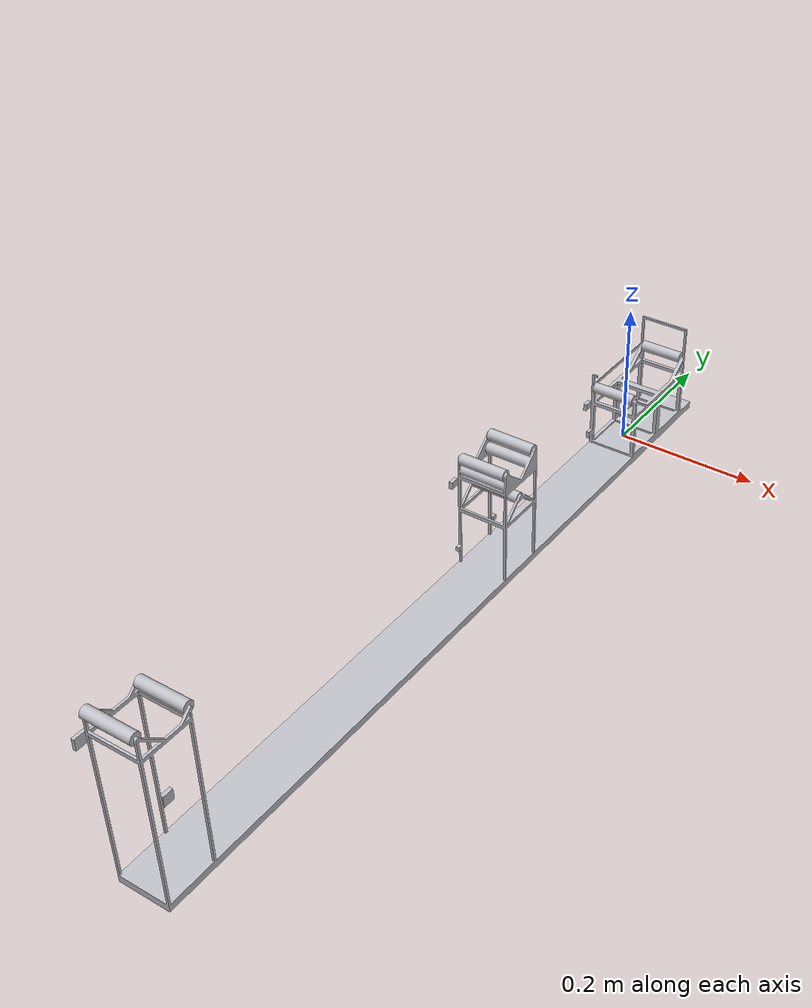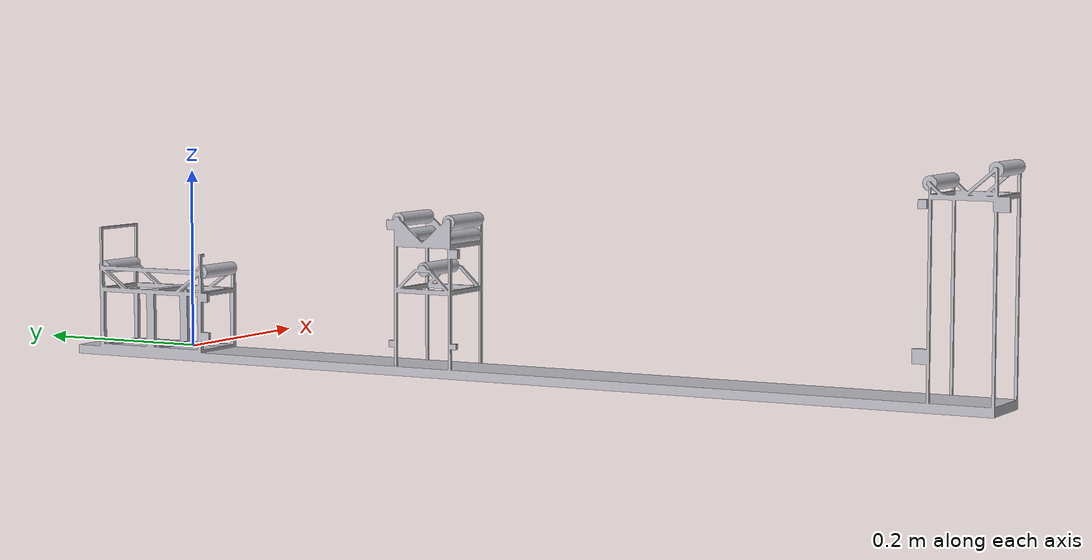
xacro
<?xml version="1.0" ?>
<robot name="(Unsaved)" xmlns:xacro="http://www.ros.org/wiki/xacro">

<xacro:include filename="$(find (Unsaved)_description)/urdf/materials.xacro" />
<xacro:include filename="$(find (Unsaved)_description)/urdf/(Unsaved).trans" />
<xacro:include filename="$(find (Unsaved)_description)/urdf/(Unsaved).gazebo" />
<link name="base_link">
  <inertial>
    <origin xyz="-0.0002354925576125097 -0.39870213925071846 0.0038001166433010557" rpy="0 0 0"/>
    <mass value="6.838797424372215"/>
    <inertia ixx="0.719389" iyy="0.013127" izz="0.712465" ixy="-0.000145" iyz="-0.000399" ixz="0.000157"/>
  </inertial>
  <visual>
    <origin xyz="0 0 0" rpy="0 0 0"/>
    <geometry>
      <mesh filename="package://(Unsaved)_description/meshes/base_link.stl" scale="0.001 0.001 0.001"/>
    </geometry>
    <material name="silver"/>
  </visual>
  <collision>
    <origin xyz="0 0 0" rpy="0 0 0"/>
    <geometry>
      <mesh filename="package://(Unsaved)_description/meshes/base_link.stl" scale="0.001 0.001 0.001"/>
    </geometry>
  </collision>
</link>

<link name="roller__6__1">
  <inertial>
    <origin xyz="0.029999999999999978 3.0897243692706855e-07 2.1613319246827079e-07" rpy="0 0 0"/>
    <mass value="0.08240024466238413"/>
    <inertia ixx="2e-06" iyy="2.6e-05" izz="2.6e-05" ixy="-0.0" iyz="-0.0" ixz="-0.0"/>
  </inertial>
  <visual>
    <origin xyz="0.03 -0.102509 -0.087687" rpy="0 0 0"/>
    <geometry>
      <mesh filename="package://(Unsaved)_description/meshes/roller__6__1.stl" scale="0.001 0.001 0.001"/>
    </geometry>
    <material name="silver"/>
  </visual>
  <collision>
    <origin xyz="0.03 -0.102509 -0.087687" rpy="0 0 0"/>
    <geometry>
      <mesh filename="package://(Unsaved)_description/meshes/roller__6__1.stl" scale="0.001 0.001 0.001"/>
    </geometry>
  </collision>
</link>

<link name="roller_1">
  <inertial>
    <origin xyz="0.029999999999999995 -3.0897243694788523e-07 2.1613319246827079e-07" rpy="0 0 0"/>
    <mass value="0.08240024466238413"/>
    <inertia ixx="2e-06" iyy="2.6e-05" izz="2.6e-05" ixy="-0.0" iyz="0.0" ixz="0.0"/>
  </inertial>
  <visual>
    <origin xyz="0.03 0.032509 -0.087687" rpy="0 0 0"/>
    <geometry>
      <mesh filename="package://(Unsaved)_description/meshes/roller_1.stl" scale="0.001 0.001 0.001"/>
    </geometry>
    <material name="silver"/>
  </visual>
  <collision>
    <origin xyz="0.03 0.032509 -0.087687" rpy="0 0 0"/>
    <geometry>
      <mesh filename="package://(Unsaved)_description/meshes/roller_1.stl" scale="0.001 0.001 0.001"/>
    </geometry>
  </collision>
</link>

<link name="roller__1__1">
  <inertial>
    <origin xyz="0.03200000000000001 1.6685805526162056e-07 -3.9324120906791826e-07" rpy="0 0 0"/>
    <mass value="0.08720307224128394"/>
    <inertia ixx="2e-06" iyy="3.1e-05" izz="3.1e-05" ixy="-0.0" iyz="0.0" ixz="0.0"/>
  </inertial>
  <visual>
    <origin xyz="0.032 0.291761 -0.156029" rpy="0 0 0"/>
    <geometry>
      <mesh filename="package://(Unsaved)_description/meshes/roller__1__1.stl" scale="0.001 0.001 0.001"/>
    </geometry>
    <material name="silver"/>
  </visual>
  <collision>
    <origin xyz="0.032 0.291761 -0.156029" rpy="0 0 0"/>
    <geometry>
      <mesh filename="package://(Unsaved)_description/meshes/roller__1__1.stl" scale="0.001 0.001 0.001"/>
    </geometry>
  </collision>
</link>

<link name="roller__2__1">
  <inertial>
    <origin xyz="0.03200000000000001 2.1851561560204402e-08 -2.577436074291395e-07" rpy="0 0 0"/>
    <mass value="0.0872030722412839"/>
    <inertia ixx="2e-06" iyy="3.1e-05" izz="3.1e-05" ixy="0.0" iyz="0.0" ixz="0.0"/>
  </inertial>
  <visual>
    <origin xyz="0.032 0.354237 -0.155066" rpy="0 0 0"/>
    <geometry>
      <mesh filename="package://(Unsaved)_description/meshes/roller__2__1.stl" scale="0.001 0.001 0.001"/>
    </geometry>
    <material name="silver"/>
  </visual>
  <collision>
    <origin xyz="0.032 0.354237 -0.155066" rpy="0 0 0"/>
    <geometry>
      <mesh filename="package://(Unsaved)_description/meshes/roller__2__1.stl" scale="0.001 0.001 0.001"/>
    </geometry>
  </collision>
</link>

<link name="roller__3__1">
  <inertial>
    <origin xyz="0.03200000000000001 7.923033279455538e-08 4.440079262590935e-09" rpy="0 0 0"/>
    <mass value="0.0872030722412839"/>
    <inertia ixx="2e-06" iyy="3.1e-05" izz="3.1e-05" ixy="-0.0" iyz="0.0" ixz="0.0"/>
  </inertial>
  <visual>
    <origin xyz="0.032 0.323246 -0.103268" rpy="0 0 0"/>
    <geometry>
      <mesh filename="package://(Unsaved)_description/meshes/roller__3__1.stl" scale="0.001 0.001 0.001"/>
    </geometry>
    <material name="silver"/>
  </visual>
  <collision>
    <origin xyz="0.032 0.323246 -0.103268" rpy="0 0 0"/>
    <geometry>
      <mesh filename="package://(Unsaved)_description/meshes/roller__3__1.stl" scale="0.001 0.001 0.001"/>
    </geometry>
  </collision>
</link>

<link name="roller__4__1">
  <inertial>
    <origin xyz="0.03200000000000001 4.50609345170605e-07 -1.0875820888323062e-07" rpy="0 0 0"/>
    <mass value="0.08720307224128414"/>
    <inertia ixx="2e-06" iyy="3.1e-05" izz="3.1e-05" ixy="0.0" iyz="0.0" ixz="0.0"/>
  </inertial>
  <visual>
    <origin xyz="0.032 0.894931 -0.212484" rpy="0 0 0"/>
    <geometry>
      <mesh filename="package://(Unsaved)_description/meshes/roller__4__1.stl" scale="0.001 0.001 0.001"/>
    </geometry>
    <material name="silver"/>
  </visual>
  <collision>
    <origin xyz="0.032 0.894931 -0.212484" rpy="0 0 0"/>
    <geometry>
      <mesh filename="package://(Unsaved)_description/meshes/roller__4__1.stl" scale="0.001 0.001 0.001"/>
    </geometry>
  </collision>
</link>

<link name="roller__5__1">
  <inertial>
    <origin xyz="0.03200000000000001 -4.0239077925274813e-07 -2.447294666918509e-08" rpy="0 0 0"/>
    <mass value="0.08720307224128414"/>
    <inertia ixx="2e-06" iyy="3.1e-05" izz="3.1e-05" ixy="-0.0" iyz="0.0" ixz="0.0"/>
  </inertial>
  <visual>
    <origin xyz="0.032 0.96236 -0.227475" rpy="0 0 0"/>
    <geometry>
      <mesh filename="package://(Unsaved)_description/meshes/roller__5__1.stl" scale="0.001 0.001 0.001"/>
    </geometry>
    <material name="silver"/>
  </visual>
  <collision>
    <origin xyz="0.032 0.96236 -0.227475" rpy="0 0 0"/>
    <geometry>
      <mesh filename="package://(Unsaved)_description/meshes/roller__5__1.stl" scale="0.001 0.001 0.001"/>
    </geometry>
  </collision>
</link>

<joint name="Revolute 1" type="continuous">
  <origin xyz="-0.03 0.102509 0.087687" rpy="0 0 0"/>
  <parent link="base_link"/>
  <child link="roller__6__1"/>
  <axis xyz="-1.0 0.0 0.0"/>
</joint>

<joint name="Revolute 2" type="continuous">
  <origin xyz="-0.03 -0.032509 0.087687" rpy="0 0 0"/>
  <parent link="base_link"/>
  <child link="roller_1"/>
  <axis xyz="1.0 0.0 0.0"/>
</joint>

<joint name="Revolute 3" type="continuous">
  <origin xyz="-0.032 -0.291761 0.156029" rpy="0 0 0"/>
  <parent link="base_link"/>
  <child link="roller__1__1"/>
  <axis xyz="1.0 0.0 0.0"/>
</joint>

<joint name="Revolute 4" type="continuous">
  <origin xyz="-0.032 -0.354237 0.155066" rpy="0 0 0"/>
  <parent link="base_link"/>
  <child link="roller__2__1"/>
  <axis xyz="1.0 0.0 0.0"/>
</joint>

<joint name="Revolute 5" type="continuous">
  <origin xyz="-0.032 -0.323246 0.103268" rpy="0 0 0"/>
  <parent link="base_link"/>
  <child link="roller__3__1"/>
  <axis xyz="-1.0 0.0 0.0"/>
</joint>

<joint name="Revolute 6" type="continuous">
  <origin xyz="-0.032 -0.894931 0.212484" rpy="0 0 0"/>
  <parent link="base_link"/>
  <child link="roller__4__1"/>
  <axis xyz="1.0 0.0 0.0"/>
</joint>

<joint name="Revolute 7" type="continuous">
  <origin xyz="-0.032 -0.96236 0.227475" rpy="0 0 0"/>
  <parent link="base_link"/>
  <child link="roller__5__1"/>
  <axis xyz="1.0 0.0 0.0"/>
</joint>

</robot>

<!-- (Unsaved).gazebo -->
<robot name="(Unsaved)" xmlns:xacro="http://www.ros.org/wiki/xacro" >

<xacro:property name="body_color" value="Gazebo/Silver" />

<gazebo>
  <plugin name="control" filename="libgazebo_ros_control.so"/>
</gazebo>
<gazebo reference="base_link">
  <material>${body_color}</material>
  <mu1>0.2</mu1>
  <mu2>0.2</mu2>
  <selfCollide>true</selfCollide>
  <gravity>true</gravity>
</gazebo>

<gazebo reference="roller__6__1">
  <material>${body_color}</material>
  <mu1>0.2</mu1>
  <mu2>0.2</mu2>
  <selfCollide>true</selfCollide>
</gazebo>

<gazebo reference="roller_1">
  <material>${body_color}</material>
  <mu1>0.2</mu1>
  <mu2>0.2</mu2>
  <selfCollide>true</selfCollide>
</gazebo>

<gazebo reference="roller__1__1">
  <material>${body_color}</material>
  <mu1>0.2</mu1>
  <mu2>0.2</mu2>
  <selfCollide>true</selfCollide>
</gazebo>

<gazebo reference="roller__2__1">
  <material>${body_color}</material>
  <mu1>0.2</mu1>
  <mu2>0.2</mu2>
  <selfCollide>true</selfCollide>
</gazebo>

<gazebo reference="roller__3__1">
  <material>${body_color}</material>
  <mu1>0.2</mu1>
  <mu2>0.2</mu2>
  <selfCollide>true</selfCollide>
</gazebo>

<gazebo reference="roller__4__1">
  <material>${body_color}</material>
  <mu1>0.2</mu1>
  <mu2>0.2</mu2>
  <selfCollide>true</selfCollide>
</gazebo>

<gazebo reference="roller__5__1">
  <material>${body_color}</material>
  <mu1>0.2</mu1>
  <mu2>0.2</mu2>
  <selfCollide>true</selfCollide>
</gazebo>

</robot>
